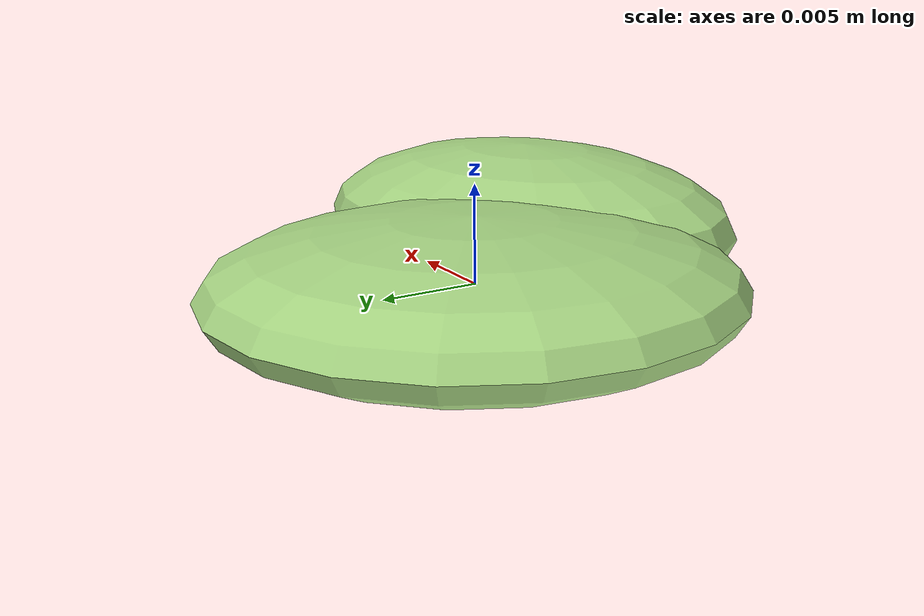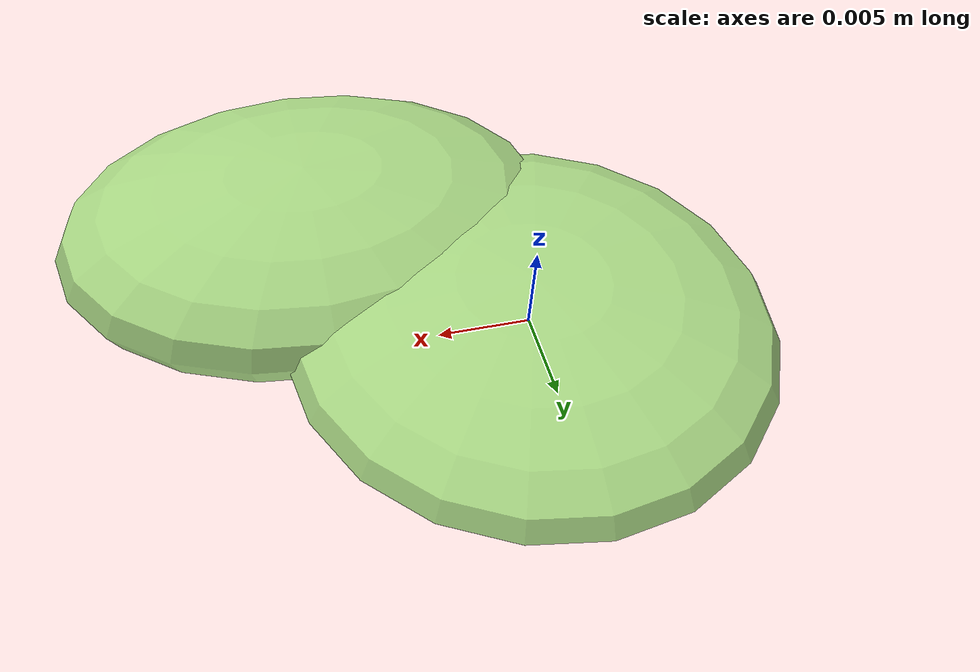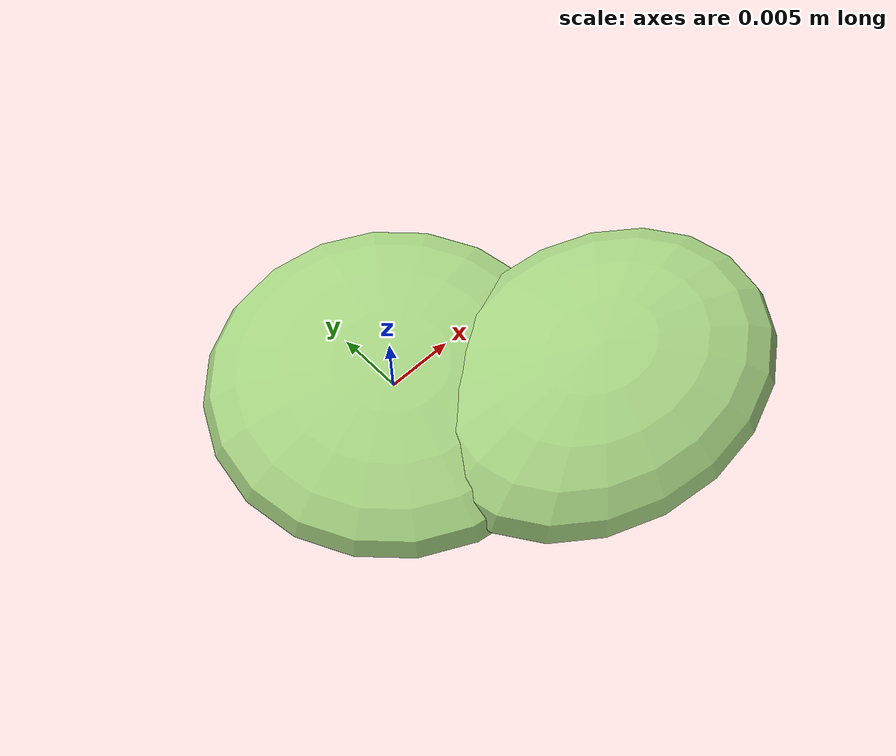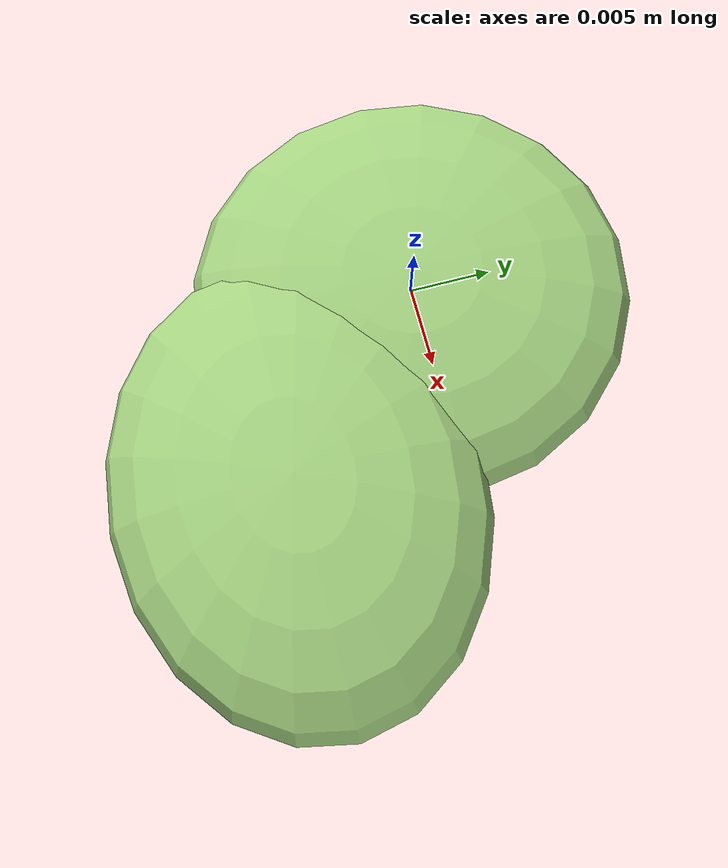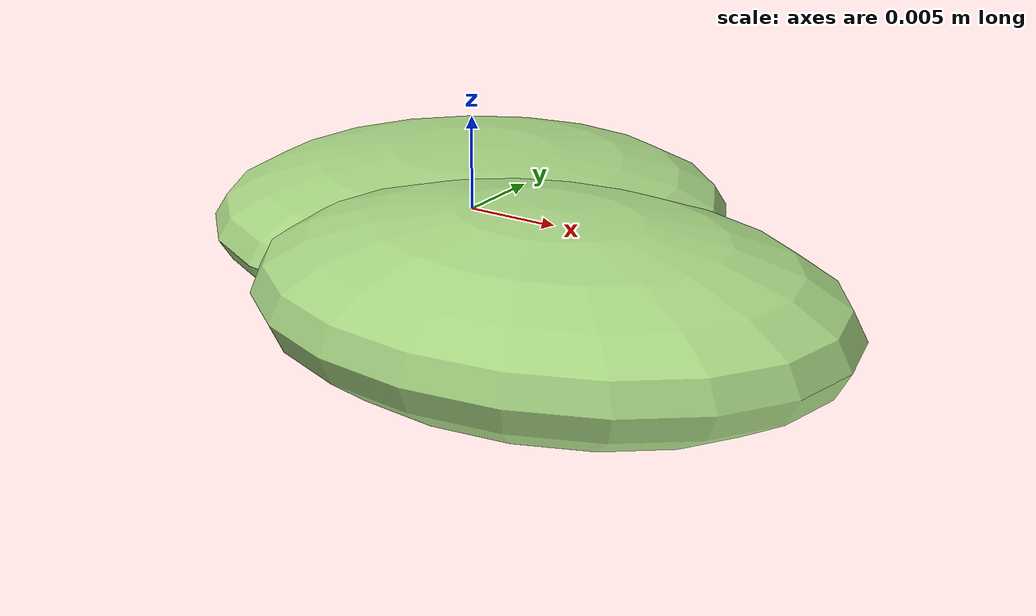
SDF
<?xml version="1.0" ?>
<!-- |    This document was autogenerated by xmacro from data/veggie_template/veggie_base.sdf.xacro  | -->
<!-- |    EDITING THIS FILE BY HAND IS NOT RECOMMENDED                                               | -->
<sdf version="1.8">
	<!-- Parameters -->
	<!-- Base -->
	<!-- Joint 0 -->
	<!-- Link 1 -->
	<!-- Joint 1 -->
	<!-- Link 2 -->
	<!-- Primitives -->
	<!-- All dimensions are half -->
	<!-- Object -->
	<model name="veggie">
		<!-- link0 -->
		<link name="link0">
			<inertial>
				<mass>0.0025771160239699306</mass>
				<inertia>
					<ixx>1.0075148316873606e-07</ixx>
					<ixy>0</ixy>
					<ixz>0</ixz>
					<iyy>9.66115678732498e-08</iyy>
					<iyz>0</iyz>
					<izz>1.8527827945928523e-07</izz>
				</inertia>
			</inertial>
			<visual name="link0_visual">
				<pose>0 0 0 0 0 0</pose>
				<geometry>
					<ellipsoid>
						<radii>0.013255870093214018 0.013555447687036641 0.0034239092221610853</radii>
					</ellipsoid>
				</geometry>
				<material>
					<ambient>0.659 0.839 0.514 1</ambient>
					<diffuse>0.659 0.839 0.514 1</diffuse>
					<specular>0 0 0 0</specular>
					<emissive>0 0 0 1</emissive>
				</material>
			</visual>
			<collision name="link0_collision">
				<pose>0 0 0 0 0 0 </pose>
				<geometry>
					<ellipsoid>
						<radii>0.013255870093214018 0.013555447687036641 0.0034239092221610853</radii>
					</ellipsoid>
				</geometry>
			</collision>
		</link>
		<!-- link1 -->
		<joint name="joint0" type="fixed">
			<pose relative_to="link0">0.010578324177495903 -0.009702055270004886 0.0003636407664999889 0.0 0.0 0.0</pose>
			<parent>link0</parent>
			<child>link1</child>
		</joint>
		<link name="link1">
			<pose relative_to="joint0">0 0 0 0 0 0</pose>
			<inertial>
				<mass>0.002868692205321632</mass>
				<inertia>
					<ixx>8.075727879756821e-08</ixx>
					<ixy>0</ixy>
					<ixz>0</ixz>
					<iyy>1.3057176970484187e-07</iyy>
					<iyz>0</iyz>
					<izz>1.9032848018645938e-07</izz>
				</inertia>
			</inertial>
			<visual name="link1_visual">
				<pose>0 0 0 0 0 0</pose>
				<geometry>
					<ellipsoid>
						<radii>0.01446648321265226 0.011065927220442608 0.004278027298528329</radii>
					</ellipsoid>
				</geometry>
				<material>
					<ambient>0.659 0.839 0.514 1</ambient>
					<diffuse>0.659 0.839 0.514 1</diffuse>
					<specular>0 0 0 0</specular>
					<emissive>0 0 0 1</emissive>
				</material>
			</visual>
			<collision name="link1_collision">
				<pose>0 0 0 0 0 0 </pose>
				<geometry>
					<ellipsoid>
						<radii>0.01446648321265226 0.011065927220442608 0.004278027298528329</radii>
					</ellipsoid>
				</geometry>
			</collision>
		</link>
		<!-- link2 -->
	</model>
</sdf>
